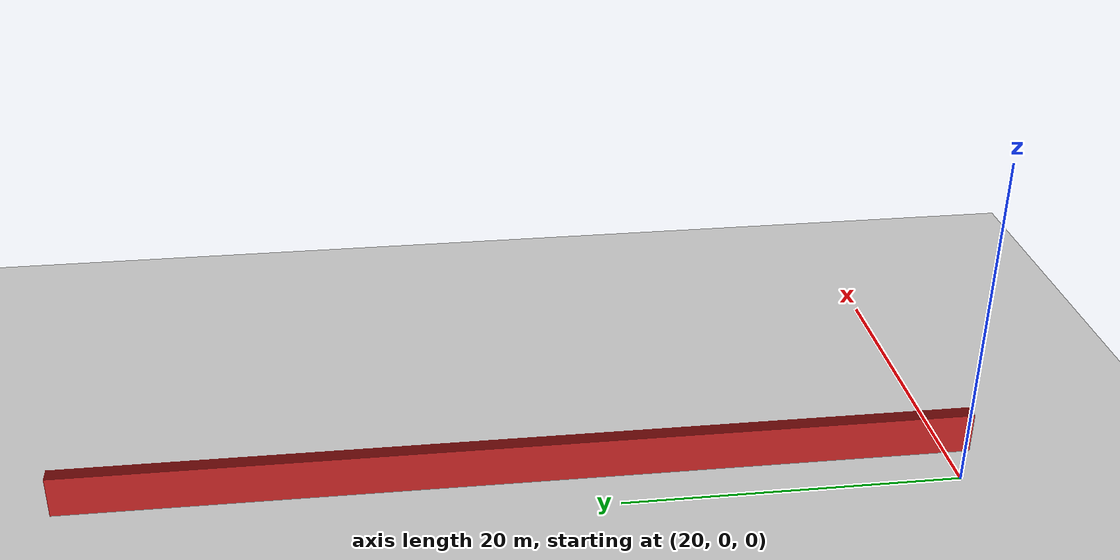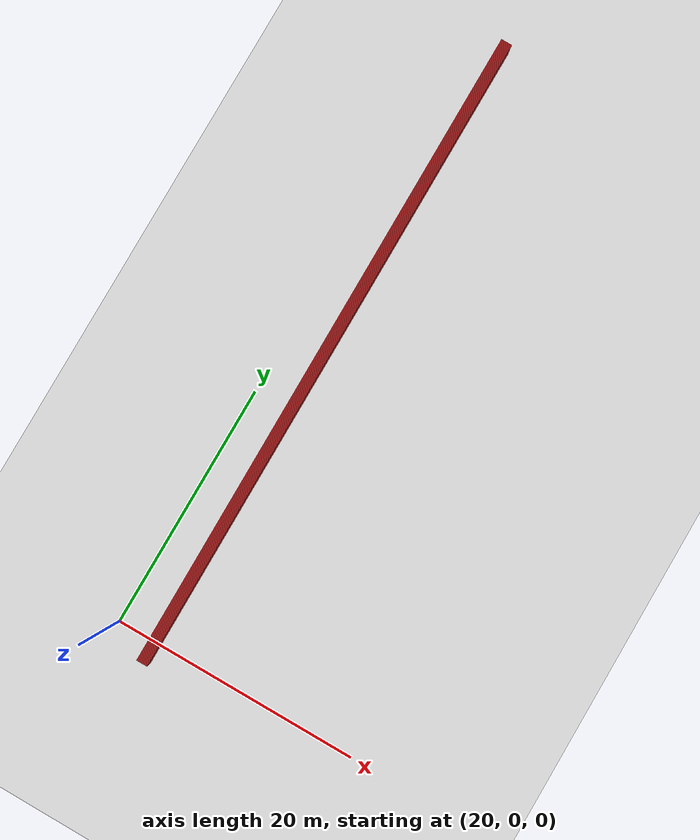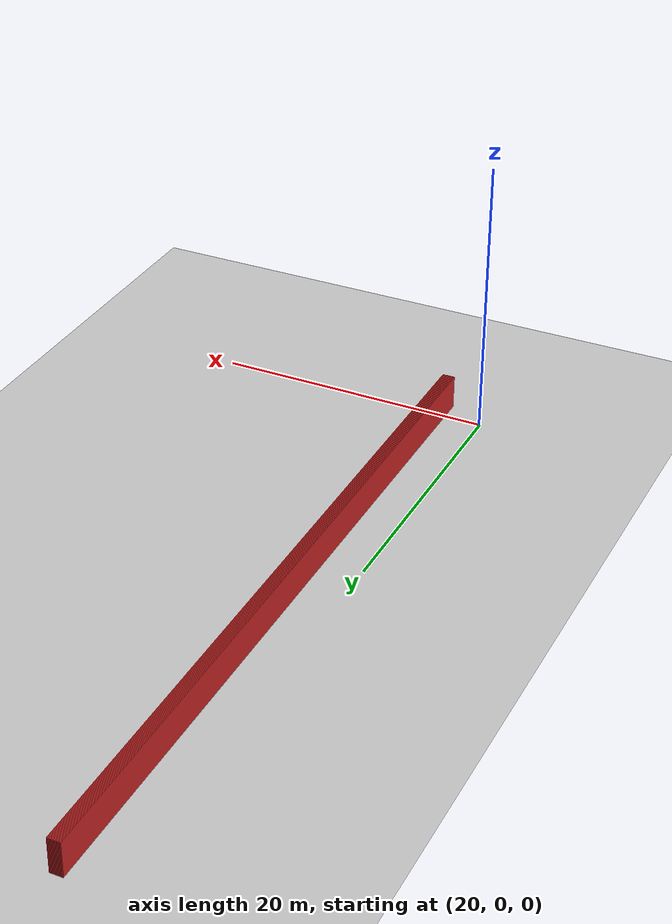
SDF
<sdf version="1.4">
 <world name="1_wall">
  <model name="ground_plane">
   <static>1</static>
   <link name="link">
    <collision name="collision">
     <geometry><plane><normal>0 0 1</normal><size>1000 1000</size></plane></geometry>
     <surface><friction><ode><mu>100</mu><mu2>50</mu2></ode></friction></surface>
    </collision>
    <visual name="visual">
     <cast_shadows>0</cast_shadows>
     <geometry><plane><normal>0 0 1</normal><size>10000 10000</size></plane></geometry>
     <material>
      <script><uri>file://media/materials/scripts/gazebo.material</uri><name>Gazebo/Grey</name></script>
     </material>
    </visual>
    <velocity_decay><linear>0</linear><angular>0</angular></velocity_decay>
   </link>
  </model>
  <model name="Wall_484">
   <static>1</static>
   <link name="Wall_484">
    <collision name="Wall_Collision_484">
     <geometry><box><size>53.65 0.05 2.5</size></box></geometry>
     <pose>0 0 1.25 0 -0 0</pose>
    </collision>
    <visual name="Wall_Visual_484">
     <pose>0 0 1.25 0 -0 0</pose>
     <geometry><box><size>53.65 0.05 2.5</size></box></geometry>
     <material>
      <script><uri>file://media/materials/scripts/gazebo.material</uri><name>Gazebo/Red</name></script>
     </material>
    </visual>
    <velocity_decay><linear>0</linear><angular>0</angular></velocity_decay>
    <pose>22.7 25.3 0 0 0 1.5707963267948966</pose>
   </link>
  </model>
  <model name="Wall_485">
   <static>1</static>
   <link name="Wall_485">
    <collision name="Wall_Collision_485">
     <geometry><box><size>53.65 0.05 2.5</size></box></geometry>
     <pose>0 0 1.25 0 -0 0</pose>
    </collision>
    <visual name="Wall_Visual_485">
     <pose>0 0 1.25 0 -0 0</pose>
     <geometry><box><size>53.65 0.05 2.5</size></box></geometry>
     <material>
      <script><uri>file://media/materials/scripts/gazebo.material</uri><name>Gazebo/Red</name></script>
     </material>
    </visual>
    <velocity_decay><linear>0</linear><angular>0</angular></velocity_decay>
    <pose>22.75 25.3 0 0 0 1.5707963267948966</pose>
   </link>
  </model>
  <model name="Wall_486">
   <static>1</static>
   <link name="Wall_486">
    <collision name="Wall_Collision_486">
     <geometry><box><size>53.65 0.05 2.5</size></box></geometry>
     <pose>0 0 1.25 0 -0 0</pose>
    </collision>
    <visual name="Wall_Visual_486">
     <pose>0 0 1.25 0 -0 0</pose>
     <geometry><box><size>53.65 0.05 2.5</size></box></geometry>
     <material>
      <script><uri>file://media/materials/scripts/gazebo.material</uri><name>Gazebo/Red</name></script>
     </material>
    </visual>
    <velocity_decay><linear>0</linear><angular>0</angular></velocity_decay>
    <pose>22.8 25.3 0 0 0 1.5707963267948966</pose>
   </link>
  </model>
  <model name="Wall_487">
   <static>1</static>
   <link name="Wall_487">
    <collision name="Wall_Collision_487">
     <geometry><box><size>53.65 0.05 2.5</size></box></geometry>
     <pose>0 0 1.25 0 -0 0</pose>
    </collision>
    <visual name="Wall_Visual_487">
     <pose>0 0 1.25 0 -0 0</pose>
     <geometry><box><size>53.65 0.05 2.5</size></box></geometry>
     <material>
      <script><uri>file://media/materials/scripts/gazebo.material</uri><name>Gazebo/Red</name></script>
     </material>
    </visual>
    <velocity_decay><linear>0</linear><angular>0</angular></velocity_decay>
    <pose>22.85 25.3 0 0 0 1.5707963267948966</pose>
   </link>
  </model>
  <model name="Wall_488">
   <static>1</static>
   <link name="Wall_488">
    <collision name="Wall_Collision_488">
     <geometry><box><size>53.65 0.05 2.5</size></box></geometry>
     <pose>0 0 1.25 0 -0 0</pose>
    </collision>
    <visual name="Wall_Visual_488">
     <pose>0 0 1.25 0 -0 0</pose>
     <geometry><box><size>53.65 0.05 2.5</size></box></geometry>
     <material>
      <script><uri>file://media/materials/scripts/gazebo.material</uri><name>Gazebo/Red</name></script>
     </material>
    </visual>
    <velocity_decay><linear>0</linear><angular>0</angular></velocity_decay>
    <pose>22.9 25.3 0 0 0 1.5707963267948966</pose>
   </link>
  </model>
  <model name="Wall_489">
   <static>1</static>
   <link name="Wall_489">
    <collision name="Wall_Collision_489">
     <geometry><box><size>53.65 0.05 2.5</size></box></geometry>
     <pose>0 0 1.25 0 -0 0</pose>
    </collision>
    <visual name="Wall_Visual_489">
     <pose>0 0 1.25 0 -0 0</pose>
     <geometry><box><size>53.65 0.05 2.5</size></box></geometry>
     <material>
      <script><uri>file://media/materials/scripts/gazebo.material</uri><name>Gazebo/Red</name></script>
     </material>
    </visual>
    <velocity_decay><linear>0</linear><angular>0</angular></velocity_decay>
    <pose>22.95 25.3 0 0 0 1.5707963267948966</pose>
   </link>
  </model>
  <model name="Wall_490">
   <static>1</static>
   <link name="Wall_490">
    <collision name="Wall_Collision_490">
     <geometry><box><size>53.65 0.05 2.5</size></box></geometry>
     <pose>0 0 1.25 0 -0 0</pose>
    </collision>
    <visual name="Wall_Visual_490">
     <pose>0 0 1.25 0 -0 0</pose>
     <geometry><box><size>53.65 0.05 2.5</size></box></geometry>
     <material>
      <script><uri>file://media/materials/scripts/gazebo.material</uri><name>Gazebo/Red</name></script>
     </material>
    </visual>
    <velocity_decay><linear>0</linear><angular>0</angular></velocity_decay>
    <pose>23.0 25.3 0 0 0 1.5707963267948966</pose>
   </link>
  </model>
  <model name="Wall_491">
   <static>1</static>
   <link name="Wall_491">
    <collision name="Wall_Collision_491">
     <geometry><box><size>53.65 0.05 2.5</size></box></geometry>
     <pose>0 0 1.25 0 -0 0</pose>
    </collision>
    <visual name="Wall_Visual_491">
     <pose>0 0 1.25 0 -0 0</pose>
     <geometry><box><size>53.65 0.05 2.5</size></box></geometry>
     <material>
      <script><uri>file://media/materials/scripts/gazebo.material</uri><name>Gazebo/Red</name></script>
     </material>
    </visual>
    <velocity_decay><linear>0</linear><angular>0</angular></velocity_decay>
    <pose>23.05 25.3 0 0 0 1.5707963267948966</pose>
   </link>
  </model>
  <model name="Wall_492">
   <static>1</static>
   <link name="Wall_492">
    <collision name="Wall_Collision_492">
     <geometry><box><size>53.65 0.05 2.5</size></box></geometry>
     <pose>0 0 1.25 0 -0 0</pose>
    </collision>
    <visual name="Wall_Visual_492">
     <pose>0 0 1.25 0 -0 0</pose>
     <geometry><box><size>53.65 0.05 2.5</size></box></geometry>
     <material>
      <script><uri>file://media/materials/scripts/gazebo.material</uri><name>Gazebo/Red</name></script>
     </material>
    </visual>
    <velocity_decay><linear>0</linear><angular>0</angular></velocity_decay>
    <pose>23.1 25.3 0 0 0 1.5707963267948966</pose>
   </link>
  </model>
  <model name="Wall_493">
   <static>1</static>
   <link name="Wall_493">
    <collision name="Wall_Collision_493">
     <geometry><box><size>53.65 0.05 2.5</size></box></geometry>
     <pose>0 0 1.25 0 -0 0</pose>
    </collision>
    <visual name="Wall_Visual_493">
     <pose>0 0 1.25 0 -0 0</pose>
     <geometry><box><size>53.65 0.05 2.5</size></box></geometry>
     <material>
      <script><uri>file://media/materials/scripts/gazebo.material</uri><name>Gazebo/Red</name></script>
     </material>
    </visual>
    <velocity_decay><linear>0</linear><angular>0</angular></velocity_decay>
    <pose>23.15 25.3 0 0 0 1.5707963267948966</pose>
   </link>
  </model>
  <model name="Wall_494">
   <static>1</static>
   <link name="Wall_494">
    <collision name="Wall_Collision_494">
     <geometry><box><size>53.65 0.05 2.5</size></box></geometry>
     <pose>0 0 1.25 0 -0 0</pose>
    </collision>
    <visual name="Wall_Visual_494">
     <pose>0 0 1.25 0 -0 0</pose>
     <geometry><box><size>53.65 0.05 2.5</size></box></geometry>
     <material>
      <script><uri>file://media/materials/scripts/gazebo.material</uri><name>Gazebo/Red</name></script>
     </material>
    </visual>
    <velocity_decay><linear>0</linear><angular>0</angular></velocity_decay>
    <pose>23.2 25.3 0 0 0 1.5707963267948966</pose>
   </link>
  </model>
  <model name="Wall_495">
   <static>1</static>
   <link name="Wall_495">
    <collision name="Wall_Collision_495">
     <geometry><box><size>53.65 0.05 2.5</size></box></geometry>
     <pose>0 0 1.25 0 -0 0</pose>
    </collision>
    <visual name="Wall_Visual_495">
     <pose>0 0 1.25 0 -0 0</pose>
     <geometry><box><size>53.65 0.05 2.5</size></box></geometry>
     <material>
      <script><uri>file://media/materials/scripts/gazebo.material</uri><name>Gazebo/Red</name></script>
     </material>
    </visual>
    <velocity_decay><linear>0</linear><angular>0</angular></velocity_decay>
    <pose>23.25 25.3 0 0 0 1.5707963267948966</pose>
   </link>
  </model>
  <model name="Wall_496">
   <static>1</static>
   <link name="Wall_496">
    <collision name="Wall_Collision_496">
     <geometry><box><size>53.65 0.05 2.5</size></box></geometry>
     <pose>0 0 1.25 0 -0 0</pose>
    </collision>
    <visual name="Wall_Visual_496">
     <pose>0 0 1.25 0 -0 0</pose>
     <geometry><box><size>53.65 0.05 2.5</size></box></geometry>
     <material>
      <script><uri>file://media/materials/scripts/gazebo.material</uri><name>Gazebo/Red</name></script>
     </material>
    </visual>
    <velocity_decay><linear>0</linear><angular>0</angular></velocity_decay>
    <pose>23.3 25.3 0 0 0 1.5707963267948966</pose>
   </link>
  </model>
  <model name="Wall_497">
   <static>1</static>
   <link name="Wall_497">
    <collision name="Wall_Collision_497">
     <geometry><box><size>53.65 0.05 2.5</size></box></geometry>
     <pose>0 0 1.25 0 -0 0</pose>
    </collision>
    <visual name="Wall_Visual_497">
     <pose>0 0 1.25 0 -0 0</pose>
     <geometry><box><size>53.65 0.05 2.5</size></box></geometry>
     <material>
      <script><uri>file://media/materials/scripts/gazebo.material</uri><name>Gazebo/Red</name></script>
     </material>
    </visual>
    <velocity_decay><linear>0</linear><angular>0</angular></velocity_decay>
    <pose>23.35 25.3 0 0 0 1.5707963267948966</pose>
   </link>
  </model>
  <model name="Wall_498">
   <static>1</static>
   <link name="Wall_498">
    <collision name="Wall_Collision_498">
     <geometry><box><size>53.65 0.05 2.5</size></box></geometry>
     <pose>0 0 1.25 0 -0 0</pose>
    </collision>
    <visual name="Wall_Visual_498">
     <pose>0 0 1.25 0 -0 0</pose>
     <geometry><box><size>53.65 0.05 2.5</size></box></geometry>
     <material>
      <script><uri>file://media/materials/scripts/gazebo.material</uri><name>Gazebo/Red</name></script>
     </material>
    </visual>
    <velocity_decay><linear>0</linear><angular>0</angular></velocity_decay>
    <pose>23.4 25.3 0 0 0 1.5707963267948966</pose>
   </link>
  </model>
  <model name="Wall_499">
   <static>1</static>
   <link name="Wall_499">
    <collision name="Wall_Collision_499">
     <geometry><box><size>53.65 0.05 2.5</size></box></geometry>
     <pose>0 0 1.25 0 -0 0</pose>
    </collision>
    <visual name="Wall_Visual_499">
     <pose>0 0 1.25 0 -0 0</pose>
     <geometry><box><size>53.65 0.05 2.5</size></box></geometry>
     <material>
      <script><uri>file://media/materials/scripts/gazebo.material</uri><name>Gazebo/Red</name></script>
     </material>
    </visual>
    <velocity_decay><linear>0</linear><angular>0</angular></velocity_decay>
    <pose>23.45 25.3 0 0 0 1.5707963267948966</pose>
   </link>
  </model>
  <model name="Wall_500">
   <static>1</static>
   <link name="Wall_500">
    <collision name="Wall_Collision_500">
     <geometry><box><size>53.65 0.05 2.5</size></box></geometry>
     <pose>0 0 1.25 0 -0 0</pose>
    </collision>
    <visual name="Wall_Visual_500">
     <pose>0 0 1.25 0 -0 0</pose>
     <geometry><box><size>53.65 0.05 2.5</size></box></geometry>
     <material>
      <script><uri>file://media/materials/scripts/gazebo.material</uri><name>Gazebo/Red</name></script>
     </material>
    </visual>
    <velocity_decay><linear>0</linear><angular>0</angular></velocity_decay>
    <pose>23.5 25.3 0 0 0 1.5707963267948966</pose>
   </link>
  </model>
  <model name="Wall_501">
   <static>1</static>
   <link name="Wall_501">
    <collision name="Wall_Collision_501">
     <geometry><box><size>53.65 0.05 2.5</size></box></geometry>
     <pose>0 0 1.25 0 -0 0</pose>
    </collision>
    <visual name="Wall_Visual_501">
     <pose>0 0 1.25 0 -0 0</pose>
     <geometry><box><size>53.65 0.05 2.5</size></box></geometry>
     <material>
      <script><uri>file://media/materials/scripts/gazebo.material</uri><name>Gazebo/Red</name></script>
     </material>
    </visual>
    <velocity_decay><linear>0</linear><angular>0</angular></velocity_decay>
    <pose>23.55 25.3 0 0 0 1.5707963267948966</pose>
   </link>
  </model>
 </world>
</sdf>
